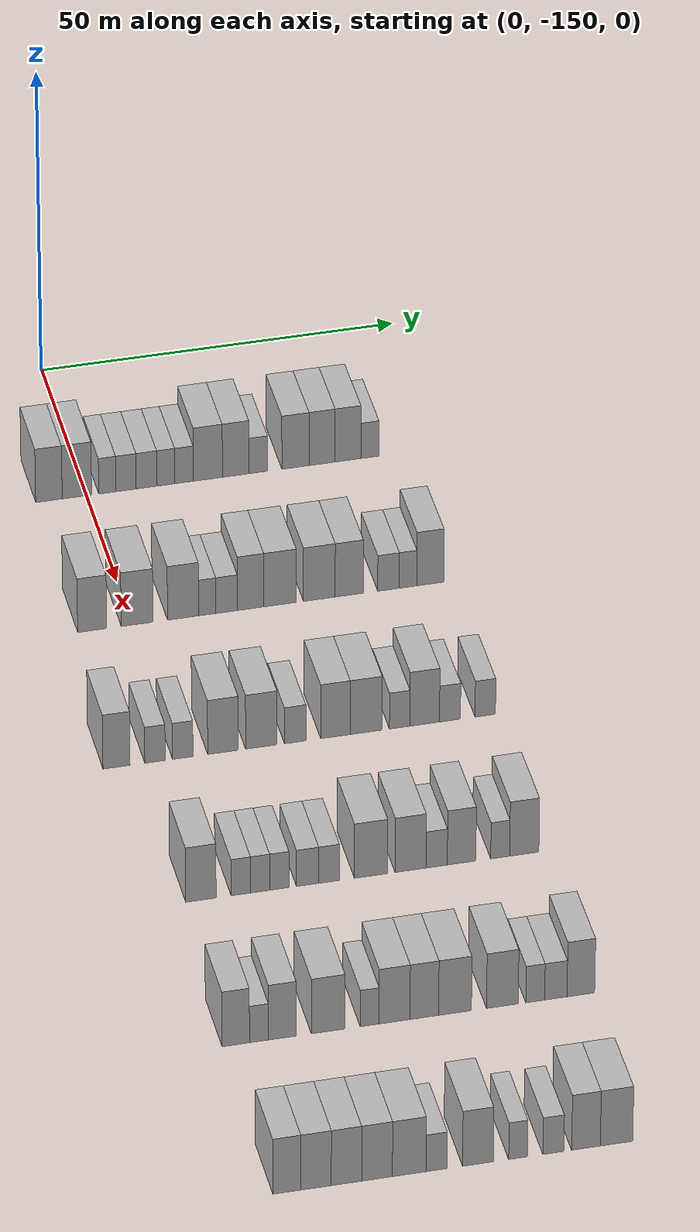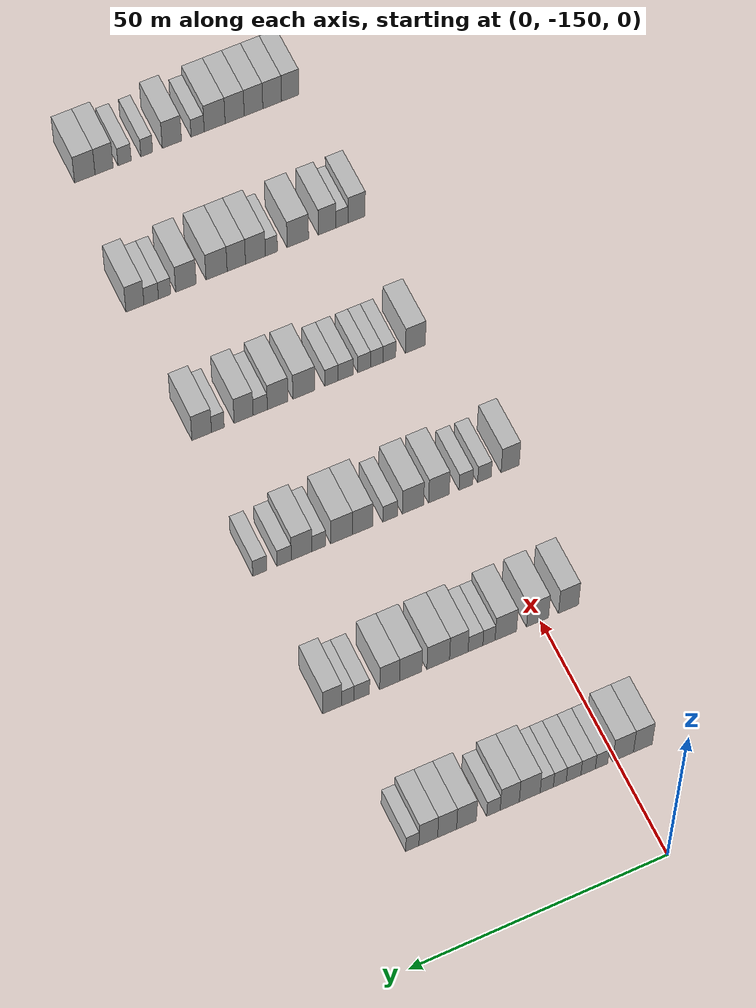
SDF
<sdf version="1.6">
 <world name="default">
  <model name="building_77">
   <static>1</static>
   <pose>25.0000 -155.2513 0 0.000000 0.000000 0.000000</pose>
   <link name="link">
    <pose>0 0 4.50 0 0 0</pose>
    <collision name="collision"><geometry><box><size>10.0000 3.7093 9.0000</size></box></geometry></collision>
    <visual name="visual">
     <cast_shadows>0</cast_shadows>
     <geometry><box><size>10.0000 3.7093 9.0000</size></box></geometry>
     <material>
      <script>
       <uri>model://HANNAS_wall/materials/scripts</uri>
       <uri>model://HANNAS_wall/materials/textures</uri>
       <name>vrc/HANNAS_wall</name>
      </script>
     </material>
    </visual>
   </link>
  </model>
  <model name="building_78">
   <static>1</static>
   <pose>25.0000 -151.3462 0 0.000000 0.000000 0.000000</pose>
   <link name="link">
    <pose>0 0 4.50 0 0 0</pose>
    <collision name="collision"><geometry><box><size>10.0000 4.1009 9.0000</size></box></geometry></collision>
    <visual name="visual">
     <cast_shadows>0</cast_shadows>
     <geometry><box><size>10.0000 4.1009 9.0000</size></box></geometry>
     <material>
      <script>
       <uri>model://HANNAS_wall/materials/scripts</uri>
       <uri>model://HANNAS_wall/materials/textures</uri>
       <name>vrc/HANNAS_wall</name>
      </script>
     </material>
    </visual>
   </link>
  </model>
  <model name="building_79">
   <static>1</static>
   <pose>25.0000 -147.0889 0 0.000000 0.000000 0.000000</pose>
   <link name="link">
    <pose>0 0 3.00 0 0 0</pose>
    <collision name="collision"><geometry><box><size>10.0000 2.4137 6.0000</size></box></geometry></collision>
    <visual name="visual">
     <cast_shadows>0</cast_shadows>
     <geometry><box><size>10.0000 2.4137 6.0000</size></box></geometry>
     <material>
      <script>
       <uri>model://HANNAS_wall/materials/scripts</uri>
       <uri>model://HANNAS_wall/materials/textures</uri>
       <name>vrc/HANNAS_wall</name>
      </script>
     </material>
    </visual>
   </link>
  </model>
  <model name="building_80">
   <static>1</static>
   <pose>25.0000 -144.4628 0 0.000000 0.000000 0.000000</pose>
   <link name="link">
    <pose>0 0 3.00 0 0 0</pose>
    <collision name="collision"><geometry><box><size>10.0000 2.8384 6.0000</size></box></geometry></collision>
    <visual name="visual">
     <cast_shadows>0</cast_shadows>
     <geometry><box><size>10.0000 2.8384 6.0000</size></box></geometry>
     <material>
      <script>
       <uri>model://HANNAS_wall/materials/scripts</uri>
       <uri>model://HANNAS_wall/materials/textures</uri>
       <name>vrc/HANNAS_wall</name>
      </script>
     </material>
    </visual>
   </link>
  </model>
  <model name="building_81">
   <static>1</static>
   <pose>25.0000 -141.5960 0 0.000000 0.000000 0.000000</pose>
   <link name="link">
    <pose>0 0 3.00 0 0 0</pose>
    <collision name="collision"><geometry><box><size>10.0000 2.8951 6.0000</size></box></geometry></collision>
    <visual name="visual">
     <cast_shadows>0</cast_shadows>
     <geometry><box><size>10.0000 2.8951 6.0000</size></box></geometry>
     <material>
      <script>
       <uri>model://HANNAS_wall/materials/scripts</uri>
       <uri>model://HANNAS_wall/materials/textures</uri>
       <name>vrc/HANNAS_wall</name>
      </script>
     </material>
    </visual>
   </link>
  </model>
  <model name="building_82">
   <static>1</static>
   <pose>25.0000 -138.8902 0 0.000000 0.000000 0.000000</pose>
   <link name="link">
    <pose>0 0 3.00 0 0 0</pose>
    <collision name="collision"><geometry><box><size>10.0000 2.5166 6.0000</size></box></geometry></collision>
    <visual name="visual">
     <cast_shadows>0</cast_shadows>
     <geometry><box><size>10.0000 2.5166 6.0000</size></box></geometry>
     <material>
      <script>
       <uri>model://HANNAS_wall/materials/scripts</uri>
       <uri>model://HANNAS_wall/materials/textures</uri>
       <name>vrc/HANNAS_wall</name>
      </script>
     </material>
    </visual>
   </link>
  </model>
  <model name="building_83">
   <static>1</static>
   <pose>25.0000 -136.3316 0 0.000000 0.000000 0.000000</pose>
   <link name="link">
    <pose>0 0 3.00 0 0 0</pose>
    <collision name="collision"><geometry><box><size>10.0000 2.6004 6.0000</size></box></geometry></collision>
    <visual name="visual">
     <cast_shadows>0</cast_shadows>
     <geometry><box><size>10.0000 2.6004 6.0000</size></box></geometry>
     <material>
      <script>
       <uri>model://HANNAS_wall/materials/scripts</uri>
       <uri>model://HANNAS_wall/materials/textures</uri>
       <name>vrc/HANNAS_wall</name>
      </script>
     </material>
    </visual>
   </link>
  </model>
  <model name="building_84">
   <static>1</static>
   <pose>25.0000 -132.9936 0 0.000000 0.000000 0.000000</pose>
   <link name="link">
    <pose>0 0 4.50 0 0 0</pose>
    <collision name="collision"><geometry><box><size>10.0000 4.0757 9.0000</size></box></geometry></collision>
    <visual name="visual">
     <cast_shadows>0</cast_shadows>
     <geometry><box><size>10.0000 4.0757 9.0000</size></box></geometry>
     <material>
      <script>
       <uri>model://HANNAS_wall/materials/scripts</uri>
       <uri>model://HANNAS_wall/materials/textures</uri>
       <name>vrc/HANNAS_wall</name>
      </script>
     </material>
    </visual>
   </link>
  </model>
  <model name="building_85">
   <static>1</static>
   <pose>25.0000 -129.0908 0 0.000000 0.000000 0.000000</pose>
   <link name="link">
    <pose>0 0 4.50 0 0 0</pose>
    <collision name="collision"><geometry><box><size>10.0000 3.7299 9.0000</size></box></geometry></collision>
    <visual name="visual">
     <cast_shadows>0</cast_shadows>
     <geometry><box><size>10.0000 3.7299 9.0000</size></box></geometry>
     <material>
      <script>
       <uri>model://HANNAS_wall/materials/scripts</uri>
       <uri>model://HANNAS_wall/materials/textures</uri>
       <name>vrc/HANNAS_wall</name>
      </script>
     </material>
    </visual>
   </link>
  </model>
  <model name="building_86">
   <static>1</static>
   <pose>25.0000 -125.9106 0 0.000000 0.000000 0.000000</pose>
   <link name="link">
    <pose>0 0 3.00 0 0 0</pose>
    <collision name="collision"><geometry><box><size>10.0000 2.6305 6.0000</size></box></geometry></collision>
    <visual name="visual">
     <cast_shadows>0</cast_shadows>
     <geometry><box><size>10.0000 2.6305 6.0000</size></box></geometry>
     <material>
      <script>
       <uri>model://HANNAS_wall/materials/scripts</uri>
       <uri>model://HANNAS_wall/materials/textures</uri>
       <name>vrc/HANNAS_wall</name>
      </script>
     </material>
    </visual>
   </link>
  </model>
  <model name="building_87">
   <static>1</static>
   <pose>25.0000 -120.6784 0 0.000000 0.000000 0.000000</pose>
   <link name="link">
    <pose>0 0 4.50 0 0 0</pose>
    <collision name="collision"><geometry><box><size>10.0000 3.8340 9.0000</size></box></geometry></collision>
    <visual name="visual">
     <cast_shadows>0</cast_shadows>
     <geometry><box><size>10.0000 3.8340 9.0000</size></box></geometry>
     <material>
      <script>
       <uri>model://HANNAS_wall/materials/scripts</uri>
       <uri>model://HANNAS_wall/materials/textures</uri>
       <name>vrc/HANNAS_wall</name>
      </script>
     </material>
    </visual>
   </link>
  </model>
  <model name="building_88">
   <static>1</static>
   <pose>25.0000 -116.9257 0 0.000000 0.000000 0.000000</pose>
   <link name="link">
    <pose>0 0 4.50 0 0 0</pose>
    <collision name="collision"><geometry><box><size>10.0000 3.6714 9.0000</size></box></geometry></collision>
    <visual name="visual">
     <cast_shadows>0</cast_shadows>
     <geometry><box><size>10.0000 3.6714 9.0000</size></box></geometry>
     <material>
      <script>
       <uri>model://HANNAS_wall/materials/scripts</uri>
       <uri>model://HANNAS_wall/materials/textures</uri>
       <name>vrc/HANNAS_wall</name>
      </script>
     </material>
    </visual>
   </link>
  </model>
  <model name="building_89">
   <static>1</static>
   <pose>25.0000 -113.2795 0 0.000000 0.000000 0.000000</pose>
   <link name="link">
    <pose>0 0 4.50 0 0 0</pose>
    <collision name="collision"><geometry><box><size>10.0000 3.6208 9.0000</size></box></geometry></collision>
    <visual name="visual">
     <cast_shadows>0</cast_shadows>
     <geometry><box><size>10.0000 3.6208 9.0000</size></box></geometry>
     <material>
      <script>
       <uri>model://HANNAS_wall/materials/scripts</uri>
       <uri>model://HANNAS_wall/materials/textures</uri>
       <name>vrc/HANNAS_wall</name>
      </script>
     </material>
    </visual>
   </link>
  </model>
  <model name="building_90">
   <static>1</static>
   <pose>25.0000 -110.1933 0 0.000000 0.000000 0.000000</pose>
   <link name="link">
    <pose>0 0 3.00 0 0 0</pose>
    <collision name="collision"><geometry><box><size>10.0000 2.5516 6.0000</size></box></geometry></collision>
    <visual name="visual">
     <cast_shadows>0</cast_shadows>
     <geometry><box><size>10.0000 2.5516 6.0000</size></box></geometry>
     <material>
      <script>
       <uri>model://HANNAS_wall/materials/scripts</uri>
       <uri>model://HANNAS_wall/materials/textures</uri>
       <name>vrc/HANNAS_wall</name>
      </script>
     </material>
    </visual>
   </link>
  </model>
  <model name="building_300">
   <static>1</static>
   <pose>55.0000 -155.5404 0 0.000000 0.000000 0.000000</pose>
   <link name="link">
    <pose>0 0 4.50 0 0 0</pose>
    <collision name="collision"><geometry><box><size>10.0000 3.9939 9.0000</size></box></geometry></collision>
    <visual name="visual">
     <cast_shadows>0</cast_shadows>
     <geometry><box><size>10.0000 3.9939 9.0000</size></box></geometry>
     <material>
      <script>
       <uri>model://HANNAS_wall/materials/scripts</uri>
       <uri>model://HANNAS_wall/materials/textures</uri>
       <name>vrc/HANNAS_wall</name>
      </script>
     </material>
    </visual>
   </link>
  </model>
  <model name="building_301">
   <static>1</static>
   <pose>55.0000 -149.3508 0 0.000000 0.000000 0.000000</pose>
   <link name="link">
    <pose>0 0 4.50 0 0 0</pose>
    <collision name="collision"><geometry><box><size>10.0000 4.3851 9.0000</size></box></geometry></collision>
    <visual name="visual">
     <cast_shadows>0</cast_shadows>
     <geometry><box><size>10.0000 4.3851 9.0000</size></box></geometry>
     <material>
      <script>
       <uri>model://HANNAS_wall/materials/scripts</uri>
       <uri>model://HANNAS_wall/materials/textures</uri>
       <name>vrc/HANNAS_wall</name>
      </script>
     </material>
    </visual>
   </link>
  </model>
  <model name="building_302">
   <static>1</static>
   <pose>55.0000 -143.0170 0 0.000000 0.000000 0.000000</pose>
   <link name="link">
    <pose>0 0 4.50 0 0 0</pose>
    <collision name="collision"><geometry><box><size>10.0000 4.2826 9.0000</size></box></geometry></collision>
    <visual name="visual">
     <cast_shadows>0</cast_shadows>
     <geometry><box><size>10.0000 4.2826 9.0000</size></box></geometry>
     <material>
      <script>
       <uri>model://HANNAS_wall/materials/scripts</uri>
       <uri>model://HANNAS_wall/materials/textures</uri>
       <name>vrc/HANNAS_wall</name>
      </script>
     </material>
    </visual>
   </link>
  </model>
  <model name="building_303">
   <static>1</static>
   <pose>55.0000 -139.6743 0 0.000000 0.000000 0.000000</pose>
   <link name="link">
    <pose>0 0 3.00 0 0 0</pose>
    <collision name="collision"><geometry><box><size>10.0000 2.4028 6.0000</size></box></geometry></collision>
    <visual name="visual">
     <cast_shadows>0</cast_shadows>
     <geometry><box><size>10.0000 2.4028 6.0000</size></box></geometry>
     <material>
      <script>
       <uri>model://HANNAS_wall/materials/scripts</uri>
       <uri>model://HANNAS_wall/materials/textures</uri>
       <name>vrc/HANNAS_wall</name>
      </script>
     </material>
    </visual>
   </link>
  </model>
  <model name="building_304">
   <static>1</static>
   <pose>55.0000 -136.9940 0 0.000000 0.000000 0.000000</pose>
   <link name="link">
    <pose>0 0 3.00 0 0 0</pose>
    <collision name="collision"><geometry><box><size>10.0000 2.9577 6.0000</size></box></geometry></collision>
    <visual name="visual">
     <cast_shadows>0</cast_shadows>
     <geometry><box><size>10.0000 2.9577 6.0000</size></box></geometry>
     <material>
      <script>
       <uri>model://HANNAS_wall/materials/scripts</uri>
       <uri>model://HANNAS_wall/materials/textures</uri>
       <name>vrc/HANNAS_wall</name>
      </script>
     </material>
    </visual>
   </link>
  </model>
  <model name="building_305">
   <static>1</static>
   <pose>55.0000 -133.6796 0 0.000000 0.000000 0.000000</pose>
   <link name="link">
    <pose>0 0 4.50 0 0 0</pose>
    <collision name="collision"><geometry><box><size>10.0000 3.6711 9.0000</size></box></geometry></collision>
    <visual name="visual">
     <cast_shadows>0</cast_shadows>
     <geometry><box><size>10.0000 3.6711 9.0000</size></box></geometry>
     <material>
      <script>
       <uri>model://HANNAS_wall/materials/scripts</uri>
       <uri>model://HANNAS_wall/materials/textures</uri>
       <name>vrc/HANNAS_wall</name>
      </script>
     </material>
    </visual>
   </link>
  </model>
  <model name="building_306">
   <static>1</static>
   <pose>55.0000 -129.6058 0 0.000000 0.000000 0.000000</pose>
   <link name="link">
    <pose>0 0 4.50 0 0 0</pose>
    <collision name="collision"><geometry><box><size>10.0000 4.4765 9.0000</size></box></geometry></collision>
    <visual name="visual">
     <cast_shadows>0</cast_shadows>
     <geometry><box><size>10.0000 4.4765 9.0000</size></box></geometry>
     <material>
      <script>
       <uri>model://HANNAS_wall/materials/scripts</uri>
       <uri>model://HANNAS_wall/materials/textures</uri>
       <name>vrc/HANNAS_wall</name>
      </script>
     </material>
    </visual>
   </link>
  </model>
  <model name="building_307">
   <static>1</static>
   <pose>55.0000 -124.1705 0 0.000000 0.000000 0.000000</pose>
   <link name="link">
    <pose>0 0 4.50 0 0 0</pose>
    <collision name="collision"><geometry><box><size>10.0000 4.3941 9.0000</size></box></geometry></collision>
    <visual name="visual">
     <cast_shadows>0</cast_shadows>
     <geometry><box><size>10.0000 4.3941 9.0000</size></box></geometry>
     <material>
      <script>
       <uri>model://HANNAS_wall/materials/scripts</uri>
       <uri>model://HANNAS_wall/materials/textures</uri>
       <name>vrc/HANNAS_wall</name>
      </script>
     </material>
    </visual>
   </link>
  </model>
  <model name="building_308">
   <static>1</static>
   <pose>55.0000 -120.0221 0 0.000000 0.000000 0.000000</pose>
   <link name="link">
    <pose>0 0 4.50 0 0 0</pose>
    <collision name="collision"><geometry><box><size>10.0000 3.9028 9.0000</size></box></geometry></collision>
    <visual name="visual">
     <cast_shadows>0</cast_shadows>
     <geometry><box><size>10.0000 3.9028 9.0000</size></box></geometry>
     <material>
      <script>
       <uri>model://HANNAS_wall/materials/scripts</uri>
       <uri>model://HANNAS_wall/materials/textures</uri>
       <name>vrc/HANNAS_wall</name>
      </script>
     </material>
    </visual>
   </link>
  </model>
  <model name="building_309">
   <static>1</static>
   <pose>55.0000 -114.5721 0 0.000000 0.000000 0.000000</pose>
   <link name="link">
    <pose>0 0 3.00 0 0 0</pose>
    <collision name="collision"><geometry><box><size>10.0000 2.9970 6.0000</size></box></geometry></collision>
    <visual name="visual">
     <cast_shadows>0</cast_shadows>
     <geometry><box><size>10.0000 2.9970 6.0000</size></box></geometry>
     <material>
      <script>
       <uri>model://HANNAS_wall/materials/scripts</uri>
       <uri>model://HANNAS_wall/materials/textures</uri>
       <name>vrc/HANNAS_wall</name>
      </script>
     </material>
    </visual>
   </link>
  </model>
  <model name="building_310">
   <static>1</static>
   <pose>55.0000 -111.8618 0 0.000000 0.000000 0.000000</pose>
   <link name="link">
    <pose>0 0 3.00 0 0 0</pose>
    <collision name="collision"><geometry><box><size>10.0000 2.4237 6.0000</size></box></geometry></collision>
    <visual name="visual">
     <cast_shadows>0</cast_shadows>
     <geometry><box><size>10.0000 2.4237 6.0000</size></box></geometry>
     <material>
      <script>
       <uri>model://HANNAS_wall/materials/scripts</uri>
       <uri>model://HANNAS_wall/materials/textures</uri>
       <name>vrc/HANNAS_wall</name>
      </script>
     </material>
    </visual>
   </link>
  </model>
  <model name="building_311">
   <static>1</static>
   <pose>55.0000 -108.7755 0 0.000000 0.000000 0.000000</pose>
   <link name="link">
    <pose>0 0 4.50 0 0 0</pose>
    <collision name="collision"><geometry><box><size>10.0000 3.7488 9.0000</size></box></geometry></collision>
    <visual name="visual">
     <cast_shadows>0</cast_shadows>
     <geometry><box><size>10.0000 3.7488 9.0000</size></box></geometry>
     <material>
      <script>
       <uri>model://HANNAS_wall/materials/scripts</uri>
       <uri>model://HANNAS_wall/materials/textures</uri>
       <name>vrc/HANNAS_wall</name>
      </script>
     </material>
    </visual>
   </link>
  </model>
  <model name="building_513">
   <static>1</static>
   <pose>85.0000 -158.5791 0 0.000000 0.000000 0.000000</pose>
   <link name="link">
    <pose>0 0 4.50 0 0 0</pose>
    <collision name="collision"><geometry><box><size>10.0000 3.6643 9.0000</size></box></geometry></collision>
    <visual name="visual">
     <cast_shadows>0</cast_shadows>
     <geometry><box><size>10.0000 3.6643 9.0000</size></box></geometry>
     <material>
      <script>
       <uri>model://HANNAS_wall/materials/scripts</uri>
       <uri>model://HANNAS_wall/materials/textures</uri>
       <name>vrc/HANNAS_wall</name>
      </script>
     </material>
    </visual>
   </link>
  </model>
  <model name="building_514">
   <static>1</static>
   <pose>85.0000 -153.3666 0 0.000000 0.000000 0.000000</pose>
   <link name="link">
    <pose>0 0 3.00 0 0 0</pose>
    <collision name="collision"><geometry><box><size>10.0000 2.7608 6.0000</size></box></geometry></collision>
    <visual name="visual">
     <cast_shadows>0</cast_shadows>
     <geometry><box><size>10.0000 2.7608 6.0000</size></box></geometry>
     <material>
      <script>
       <uri>model://HANNAS_wall/materials/scripts</uri>
       <uri>model://HANNAS_wall/materials/textures</uri>
       <name>vrc/HANNAS_wall</name>
      </script>
     </material>
    </visual>
   </link>
  </model>
  <model name="building_515">
   <static>1</static>
   <pose>85.0000 -149.6020 0 0.000000 0.000000 0.000000</pose>
   <link name="link">
    <pose>0 0 3.00 0 0 0</pose>
    <collision name="collision"><geometry><box><size>10.0000 2.7684 6.0000</size></box></geometry></collision>
    <visual name="visual">
     <cast_shadows>0</cast_shadows>
     <geometry><box><size>10.0000 2.7684 6.0000</size></box></geometry>
     <material>
      <script>
       <uri>model://HANNAS_wall/materials/scripts</uri>
       <uri>model://HANNAS_wall/materials/textures</uri>
       <name>vrc/HANNAS_wall</name>
      </script>
     </material>
    </visual>
   </link>
  </model>
  <model name="building_516">
   <static>1</static>
   <pose>85.0000 -144.1398 0 0.000000 0.000000 0.000000</pose>
   <link name="link">
    <pose>0 0 4.50 0 0 0</pose>
    <collision name="collision"><geometry><box><size>10.0000 4.1560 9.0000</size></box></geometry></collision>
    <visual name="visual">
     <cast_shadows>0</cast_shadows>
     <geometry><box><size>10.0000 4.1560 9.0000</size></box></geometry>
     <material>
      <script>
       <uri>model://HANNAS_wall/materials/scripts</uri>
       <uri>model://HANNAS_wall/materials/textures</uri>
       <name>vrc/HANNAS_wall</name>
      </script>
     </material>
    </visual>
   </link>
  </model>
  <model name="building_517">
   <static>1</static>
   <pose>85.0000 -138.9218 0 0.000000 0.000000 0.000000</pose>
   <link name="link">
    <pose>0 0 4.50 0 0 0</pose>
    <collision name="collision"><geometry><box><size>10.0000 4.2799 9.0000</size></box></geometry></collision>
    <visual name="visual">
     <cast_shadows>0</cast_shadows>
     <geometry><box><size>10.0000 4.2799 9.0000</size></box></geometry>
     <material>
      <script>
       <uri>model://HANNAS_wall/materials/scripts</uri>
       <uri>model://HANNAS_wall/materials/textures</uri>
       <name>vrc/HANNAS_wall</name>
      </script>
     </material>
    </visual>
   </link>
  </model>
  <model name="building_518">
   <static>1</static>
   <pose>85.0000 -134.3109 0 0.000000 0.000000 0.000000</pose>
   <link name="link">
    <pose>0 0 3.00 0 0 0</pose>
    <collision name="collision"><geometry><box><size>10.0000 2.9420 6.0000</size></box></geometry></collision>
    <visual name="visual">
     <cast_shadows>0</cast_shadows>
     <geometry><box><size>10.0000 2.9420 6.0000</size></box></geometry>
     <material>
      <script>
       <uri>model://HANNAS_wall/materials/scripts</uri>
       <uri>model://HANNAS_wall/materials/textures</uri>
       <name>vrc/HANNAS_wall</name>
      </script>
     </material>
    </visual>
   </link>
  </model>
  <model name="building_519">
   <static>1</static>
   <pose>85.0000 -128.8270 0 0.000000 0.000000 0.000000</pose>
   <link name="link">
    <pose>0 0 4.50 0 0 0</pose>
    <collision name="collision"><geometry><box><size>10.0000 4.0256 9.0000</size></box></geometry></collision>
    <visual name="visual">
     <cast_shadows>0</cast_shadows>
     <geometry><box><size>10.0000 4.0256 9.0000</size></box></geometry>
     <material>
      <script>
       <uri>model://HANNAS_wall/materials/scripts</uri>
       <uri>model://HANNAS_wall/materials/textures</uri>
       <name>vrc/HANNAS_wall</name>
      </script>
     </material>
    </visual>
   </link>
  </model>
  <model name="building_520">
   <static>1</static>
   <pose>85.0000 -124.6363 0 0.000000 0.000000 0.000000</pose>
   <link name="link">
    <pose>0 0 4.50 0 0 0</pose>
    <collision name="collision"><geometry><box><size>10.0000 4.3558 9.0000</size></box></geometry></collision>
    <visual name="visual">
     <cast_shadows>0</cast_shadows>
     <geometry><box><size>10.0000 4.3558 9.0000</size></box></geometry>
     <material>
      <script>
       <uri>model://HANNAS_wall/materials/scripts</uri>
       <uri>model://HANNAS_wall/materials/textures</uri>
       <name>vrc/HANNAS_wall</name>
      </script>
     </material>
    </visual>
   </link>
  </model>
  <model name="building_521">
   <static>1</static>
   <pose>85.0000 -120.0628 0 0.000000 0.000000 0.000000</pose>
   <link name="link">
    <pose>0 0 3.00 0 0 0</pose>
    <collision name="collision"><geometry><box><size>10.0000 2.7913 6.0000</size></box></geometry></collision>
    <visual name="visual">
     <cast_shadows>0</cast_shadows>
     <geometry><box><size>10.0000 2.7913 6.0000</size></box></geometry>
     <material>
      <script>
       <uri>model://HANNAS_wall/materials/scripts</uri>
       <uri>model://HANNAS_wall/materials/textures</uri>
       <name>vrc/HANNAS_wall</name>
      </script>
     </material>
    </visual>
   </link>
  </model>
  <model name="building_522">
   <static>1</static>
   <pose>85.0000 -116.6362 0 0.000000 0.000000 0.000000</pose>
   <link name="link">
    <pose>0 0 4.50 0 0 0</pose>
    <collision name="collision"><geometry><box><size>10.0000 4.0618 9.0000</size></box></geometry></collision>
    <visual name="visual">
     <cast_shadows>0</cast_shadows>
     <geometry><box><size>10.0000 4.0618 9.0000</size></box></geometry>
     <material>
      <script>
       <uri>model://HANNAS_wall/materials/scripts</uri>
       <uri>model://HANNAS_wall/materials/textures</uri>
       <name>vrc/HANNAS_wall</name>
      </script>
     </material>
    </visual>
   </link>
  </model>
  <model name="building_523">
   <static>1</static>
   <pose>85.0000 -113.1705 0 0.000000 0.000000 0.000000</pose>
   <link name="link">
    <pose>0 0 3.00 0 0 0</pose>
    <collision name="collision"><geometry><box><size>10.0000 2.8697 6.0000</size></box></geometry></collision>
    <visual name="visual">
     <cast_shadows>0</cast_shadows>
     <geometry><box><size>10.0000 2.8697 6.0000</size></box></geometry>
     <material>
      <script>
       <uri>model://HANNAS_wall/materials/scripts</uri>
       <uri>model://HANNAS_wall/materials/textures</uri>
       <name>vrc/HANNAS_wall</name>
      </script>
     </material>
    </visual>
   </link>
  </model>
  <model name="building_524">
   <static>1</static>
   <pose>85.0000 -108.3420 0 0.000000 0.000000 0.000000</pose>
   <link name="link">
    <pose>0 0 3.00 0 0 0</pose>
    <collision name="collision"><geometry><box><size>10.0000 2.7872 6.0000</size></box></geometry></collision>
    <visual name="visual">
     <cast_shadows>0</cast_shadows>
     <geometry><box><size>10.0000 2.7872 6.0000</size></box></geometry>
     <material>
      <script>
       <uri>model://HANNAS_wall/materials/scripts</uri>
       <uri>model://HANNAS_wall/materials/textures</uri>
       <name>vrc/HANNAS_wall</name>
      </script>
     </material>
    </visual>
   </link>
  </model>
  <model name="building_731">
   <static>1</static>
   <pose>115.0000 -153.7175 0 0.000000 0.000000 0.000000</pose>
   <link name="link">
    <pose>0 0 4.50 0 0 0</pose>
    <collision name="collision"><geometry><box><size>10.0000 4.0666 9.0000</size></box></geometry></collision>
    <visual name="visual">
     <cast_shadows>0</cast_shadows>
     <geometry><box><size>10.0000 4.0666 9.0000</size></box></geometry>
     <material>
      <script>
       <uri>model://HANNAS_wall/materials/scripts</uri>
       <uri>model://HANNAS_wall/materials/textures</uri>
       <name>vrc/HANNAS_wall</name>
      </script>
     </material>
    </visual>
   </link>
  </model>
  <model name="building_732">
   <static>1</static>
   <pose>115.0000 -148.3792 0 0.000000 0.000000 0.000000</pose>
   <link name="link">
    <pose>0 0 3.00 0 0 0</pose>
    <collision name="collision"><geometry><box><size>10.0000 2.6101 6.0000</size></box></geometry></collision>
    <visual name="visual">
     <cast_shadows>0</cast_shadows>
     <geometry><box><size>10.0000 2.6101 6.0000</size></box></geometry>
     <material>
      <script>
       <uri>model://HANNAS_wall/materials/scripts</uri>
       <uri>model://HANNAS_wall/materials/textures</uri>
       <name>vrc/HANNAS_wall</name>
      </script>
     </material>
    </visual>
   </link>
  </model>
  <model name="building_733">
   <static>1</static>
   <pose>115.0000 -145.7975 0 0.000000 0.000000 0.000000</pose>
   <link name="link">
    <pose>0 0 3.00 0 0 0</pose>
    <collision name="collision"><geometry><box><size>10.0000 2.5533 6.0000</size></box></geometry></collision>
    <visual name="visual">
     <cast_shadows>0</cast_shadows>
     <geometry><box><size>10.0000 2.5533 6.0000</size></box></geometry>
     <material>
      <script>
       <uri>model://HANNAS_wall/materials/scripts</uri>
       <uri>model://HANNAS_wall/materials/textures</uri>
       <name>vrc/HANNAS_wall</name>
      </script>
     </material>
    </visual>
   </link>
  </model>
  <model name="building_734">
   <static>1</static>
   <pose>115.0000 -143.2306 0 0.000000 0.000000 0.000000</pose>
   <link name="link">
    <pose>0 0 3.00 0 0 0</pose>
    <collision name="collision"><geometry><box><size>10.0000 2.5805 6.0000</size></box></geometry></collision>
    <visual name="visual">
     <cast_shadows>0</cast_shadows>
     <geometry><box><size>10.0000 2.5805 6.0000</size></box></geometry>
     <material>
      <script>
       <uri>model://HANNAS_wall/materials/scripts</uri>
       <uri>model://HANNAS_wall/materials/textures</uri>
       <name>vrc/HANNAS_wall</name>
      </script>
     </material>
    </visual>
   </link>
  </model>
  <model name="building_735">
   <static>1</static>
   <pose>115.0000 -139.4433 0 0.000000 0.000000 0.000000</pose>
   <link name="link">
    <pose>0 0 3.00 0 0 0</pose>
    <collision name="collision"><geometry><box><size>10.0000 2.9941 6.0000</size></box></geometry></collision>
    <visual name="visual">
     <cast_shadows>0</cast_shadows>
     <geometry><box><size>10.0000 2.9941 6.0000</size></box></geometry>
     <material>
      <script>
       <uri>model://HANNAS_wall/materials/scripts</uri>
       <uri>model://HANNAS_wall/materials/textures</uri>
       <name>vrc/HANNAS_wall</name>
      </script>
     </material>
    </visual>
   </link>
  </model>
  <model name="building_736">
   <static>1</static>
   <pose>115.0000 -136.5608 0 0.000000 0.000000 0.000000</pose>
   <link name="link">
    <pose>0 0 3.00 0 0 0</pose>
    <collision name="collision"><geometry><box><size>10.0000 2.7710 6.0000</size></box></geometry></collision>
    <visual name="visual">
     <cast_shadows>0</cast_shadows>
     <geometry><box><size>10.0000 2.7710 6.0000</size></box></geometry>
     <material>
      <script>
       <uri>model://HANNAS_wall/materials/scripts</uri>
       <uri>model://HANNAS_wall/materials/textures</uri>
       <name>vrc/HANNAS_wall</name>
      </script>
     </material>
    </visual>
   </link>
  </model>
  <model name="building_737">
   <static>1</static>
   <pose>115.0000 -130.9454 0 0.000000 0.000000 0.000000</pose>
   <link name="link">
    <pose>0 0 4.50 0 0 0</pose>
    <collision name="collision"><geometry><box><size>10.0000 4.4600 9.0000</size></box></geometry></collision>
    <visual name="visual">
     <cast_shadows>0</cast_shadows>
     <geometry><box><size>10.0000 4.4600 9.0000</size></box></geometry>
     <material>
      <script>
       <uri>model://HANNAS_wall/materials/scripts</uri>
       <uri>model://HANNAS_wall/materials/textures</uri>
       <name>vrc/HANNAS_wall</name>
      </script>
     </material>
    </visual>
   </link>
  </model>
  <model name="building_738">
   <static>1</static>
   <pose>115.0000 -125.6364 0 0.000000 0.000000 0.000000</pose>
   <link name="link">
    <pose>0 0 4.50 0 0 0</pose>
    <collision name="collision"><geometry><box><size>10.0000 4.1579 9.0000</size></box></geometry></collision>
    <visual name="visual">
     <cast_shadows>0</cast_shadows>
     <geometry><box><size>10.0000 4.1579 9.0000</size></box></geometry>
     <material>
      <script>
       <uri>model://HANNAS_wall/materials/scripts</uri>
       <uri>model://HANNAS_wall/materials/textures</uri>
       <name>vrc/HANNAS_wall</name>
      </script>
     </material>
    </visual>
   </link>
  </model>
  <model name="building_739">
   <static>1</static>
   <pose>115.0000 -122.1219 0 0.000000 0.000000 0.000000</pose>
   <link name="link">
    <pose>0 0 3.00 0 0 0</pose>
    <collision name="collision"><geometry><box><size>10.0000 2.8711 6.0000</size></box></geometry></collision>
    <visual name="visual">
     <cast_shadows>0</cast_shadows>
     <geometry><box><size>10.0000 2.8711 6.0000</size></box></geometry>
     <material>
      <script>
       <uri>model://HANNAS_wall/materials/scripts</uri>
       <uri>model://HANNAS_wall/materials/textures</uri>
       <name>vrc/HANNAS_wall</name>
      </script>
     </material>
    </visual>
   </link>
  </model>
  <model name="building_740">
   <static>1</static>
   <pose>115.0000 -118.7641 0 0.000000 0.000000 0.000000</pose>
   <link name="link">
    <pose>0 0 4.50 0 0 0</pose>
    <collision name="collision"><geometry><box><size>10.0000 3.8444 9.0000</size></box></geometry></collision>
    <visual name="visual">
     <cast_shadows>0</cast_shadows>
     <geometry><box><size>10.0000 3.8444 9.0000</size></box></geometry>
     <material>
      <script>
       <uri>model://HANNAS_wall/materials/scripts</uri>
       <uri>model://HANNAS_wall/materials/textures</uri>
       <name>vrc/HANNAS_wall</name>
      </script>
     </material>
    </visual>
   </link>
  </model>
  <model name="building_741">
   <static>1</static>
   <pose>115.0000 -113.5637 0 0.000000 0.000000 0.000000</pose>
   <link name="link">
    <pose>0 0 3.00 0 0 0</pose>
    <collision name="collision"><geometry><box><size>10.0000 2.5564 6.0000</size></box></geometry></collision>
    <visual name="visual">
     <cast_shadows>0</cast_shadows>
     <geometry><box><size>10.0000 2.5564 6.0000</size></box></geometry>
     <material>
      <script>
       <uri>model://HANNAS_wall/materials/scripts</uri>
       <uri>model://HANNAS_wall/materials/textures</uri>
       <name>vrc/HANNAS_wall</name>
      </script>
     </material>
    </visual>
   </link>
  </model>
  <model name="building_742">
   <static>1</static>
   <pose>115.0000 -110.3175 0 0.000000 0.000000 0.000000</pose>
   <link name="link">
    <pose>0 0 4.50 0 0 0</pose>
    <collision name="collision"><geometry><box><size>10.0000 3.9361 9.0000</size></box></geometry></collision>
    <visual name="visual">
     <cast_shadows>0</cast_shadows>
     <geometry><box><size>10.0000 3.9361 9.0000</size></box></geometry>
     <material>
      <script>
       <uri>model://HANNAS_wall/materials/scripts</uri>
       <uri>model://HANNAS_wall/materials/textures</uri>
       <name>vrc/HANNAS_wall</name>
      </script>
     </material>
    </visual>
   </link>
  </model>
  <model name="building_950">
   <static>1</static>
   <pose>145.0000 -155.7242 0 0.000000 0.000000 0.000000</pose>
   <link name="link">
    <pose>0 0 4.50 0 0 0</pose>
    <collision name="collision"><geometry><box><size>10.0000 3.6025 9.0000</size></box></geometry></collision>
    <visual name="visual">
     <cast_shadows>0</cast_shadows>
     <geometry><box><size>10.0000 3.6025 9.0000</size></box></geometry>
     <material>
      <script>
       <uri>model://HANNAS_wall/materials/scripts</uri>
       <uri>model://HANNAS_wall/materials/textures</uri>
       <name>vrc/HANNAS_wall</name>
      </script>
     </material>
    </visual>
   </link>
  </model>
  <model name="building_951">
   <static>1</static>
   <pose>145.0000 -152.6740 0 0.000000 0.000000 0.000000</pose>
   <link name="link">
    <pose>0 0 3.00 0 0 0</pose>
    <collision name="collision"><geometry><box><size>10.0000 2.4980 6.0000</size></box></geometry></collision>
    <visual name="visual">
     <cast_shadows>0</cast_shadows>
     <geometry><box><size>10.0000 2.4980 6.0000</size></box></geometry>
     <material>
      <script>
       <uri>model://HANNAS_wall/materials/scripts</uri>
       <uri>model://HANNAS_wall/materials/textures</uri>
       <name>vrc/HANNAS_wall</name>
      </script>
     </material>
    </visual>
   </link>
  </model>
  <model name="building_952">
   <static>1</static>
   <pose>145.0000 -149.6035 0 0.000000 0.000000 0.000000</pose>
   <link name="link">
    <pose>0 0 4.50 0 0 0</pose>
    <collision name="collision"><geometry><box><size>10.0000 3.6430 9.0000</size></box></geometry></collision>
    <visual name="visual">
     <cast_shadows>0</cast_shadows>
     <geometry><box><size>10.0000 3.6430 9.0000</size></box></geometry>
     <material>
      <script>
       <uri>model://HANNAS_wall/materials/scripts</uri>
       <uri>model://HANNAS_wall/materials/textures</uri>
       <name>vrc/HANNAS_wall</name>
      </script>
     </material>
    </visual>
   </link>
  </model>
  <model name="building_953">
   <static>1</static>
   <pose>145.0000 -143.5641 0 0.000000 0.000000 0.000000</pose>
   <link name="link">
    <pose>0 0 4.50 0 0 0</pose>
    <collision name="collision"><geometry><box><size>10.0000 4.4358 9.0000</size></box></geometry></collision>
    <visual name="visual">
     <cast_shadows>0</cast_shadows>
     <geometry><box><size>10.0000 4.4358 9.0000</size></box></geometry>
     <material>
      <script>
       <uri>model://HANNAS_wall/materials/scripts</uri>
       <uri>model://HANNAS_wall/materials/textures</uri>
       <name>vrc/HANNAS_wall</name>
      </script>
     </material>
    </visual>
   </link>
  </model>
  <model name="building_954">
   <static>1</static>
   <pose>145.0000 -138.0978 0 0.000000 0.000000 0.000000</pose>
   <link name="link">
    <pose>0 0 3.00 0 0 0</pose>
    <collision name="collision"><geometry><box><size>10.0000 2.4967 6.0000</size></box></geometry></collision>
    <visual name="visual">
     <cast_shadows>0</cast_shadows>
     <geometry><box><size>10.0000 2.4967 6.0000</size></box></geometry>
     <material>
      <script>
       <uri>model://HANNAS_wall/materials/scripts</uri>
       <uri>model://HANNAS_wall/materials/textures</uri>
       <name>vrc/HANNAS_wall</name>
      </script>
     </material>
    </visual>
   </link>
  </model>
  <model name="building_955">
   <static>1</static>
   <pose>145.0000 -134.8040 0 0.000000 0.000000 0.000000</pose>
   <link name="link">
    <pose>0 0 4.50 0 0 0</pose>
    <collision name="collision"><geometry><box><size>10.0000 4.0909 9.0000</size></box></geometry></collision>
    <visual name="visual">
     <cast_shadows>0</cast_shadows>
     <geometry><box><size>10.0000 4.0909 9.0000</size></box></geometry>
     <material>
      <script>
       <uri>model://HANNAS_wall/materials/scripts</uri>
       <uri>model://HANNAS_wall/materials/textures</uri>
       <name>vrc/HANNAS_wall</name>
      </script>
     </material>
    </visual>
   </link>
  </model>
  <model name="building_956">
   <static>1</static>
   <pose>145.0000 -130.8693 0 0.000000 0.000000 0.000000</pose>
   <link name="link">
    <pose>0 0 4.50 0 0 0</pose>
    <collision name="collision"><geometry><box><size>10.0000 3.7784 9.0000</size></box></geometry></collision>
    <visual name="visual">
     <cast_shadows>0</cast_shadows>
     <geometry><box><size>10.0000 3.7784 9.0000</size></box></geometry>
     <material>
      <script>
       <uri>model://HANNAS_wall/materials/scripts</uri>
       <uri>model://HANNAS_wall/materials/textures</uri>
       <name>vrc/HANNAS_wall</name>
      </script>
     </material>
    </visual>
   </link>
  </model>
  <model name="building_957">
   <static>1</static>
   <pose>145.0000 -126.8108 0 0.000000 0.000000 0.000000</pose>
   <link name="link">
    <pose>0 0 4.50 0 0 0</pose>
    <collision name="collision"><geometry><box><size>10.0000 4.3387 9.0000</size></box></geometry></collision>
    <visual name="visual">
     <cast_shadows>0</cast_shadows>
     <geometry><box><size>10.0000 4.3387 9.0000</size></box></geometry>
     <material>
      <script>
       <uri>model://HANNAS_wall/materials/scripts</uri>
       <uri>model://HANNAS_wall/materials/textures</uri>
       <name>vrc/HANNAS_wall</name>
      </script>
     </material>
    </visual>
   </link>
  </model>
  <model name="building_958">
   <static>1</static>
   <pose>145.0000 -120.5418 0 0.000000 0.000000 0.000000</pose>
   <link name="link">
    <pose>0 0 4.50 0 0 0</pose>
    <collision name="collision"><geometry><box><size>10.0000 4.1991 9.0000</size></box></geometry></collision>
    <visual name="visual">
     <cast_shadows>0</cast_shadows>
     <geometry><box><size>10.0000 4.1991 9.0000</size></box></geometry>
     <material>
      <script>
       <uri>model://HANNAS_wall/materials/scripts</uri>
       <uri>model://HANNAS_wall/materials/textures</uri>
       <name>vrc/HANNAS_wall</name>
      </script>
     </material>
    </visual>
   </link>
  </model>
  <model name="building_959">
   <static>1</static>
   <pose>145.0000 -116.1884 0 0.000000 0.000000 0.000000</pose>
   <link name="link">
    <pose>0 0 3.00 0 0 0</pose>
    <collision name="collision"><geometry><box><size>10.0000 2.5077 6.0000</size></box></geometry></collision>
    <visual name="visual">
     <cast_shadows>0</cast_shadows>
     <geometry><box><size>10.0000 2.5077 6.0000</size></box></geometry>
     <material>
      <script>
       <uri>model://HANNAS_wall/materials/scripts</uri>
       <uri>model://HANNAS_wall/materials/textures</uri>
       <name>vrc/HANNAS_wall</name>
      </script>
     </material>
    </visual>
   </link>
  </model>
  <model name="building_960">
   <static>1</static>
   <pose>145.0000 -113.4516 0 0.000000 0.000000 0.000000</pose>
   <link name="link">
    <pose>0 0 3.00 0 0 0</pose>
    <collision name="collision"><geometry><box><size>10.0000 2.9659 6.0000</size></box></geometry></collision>
    <visual name="visual">
     <cast_shadows>0</cast_shadows>
     <geometry><box><size>10.0000 2.9659 6.0000</size></box></geometry>
     <material>
      <script>
       <uri>model://HANNAS_wall/materials/scripts</uri>
       <uri>model://HANNAS_wall/materials/textures</uri>
       <name>vrc/HANNAS_wall</name>
      </script>
     </material>
    </visual>
   </link>
  </model>
  <model name="building_961">
   <static>1</static>
   <pose>145.0000 -110.1316 0 0.000000 0.000000 0.000000</pose>
   <link name="link">
    <pose>0 0 4.50 0 0 0</pose>
    <collision name="collision"><geometry><box><size>10.0000 3.6741 9.0000</size></box></geometry></collision>
    <visual name="visual">
     <cast_shadows>0</cast_shadows>
     <geometry><box><size>10.0000 3.6741 9.0000</size></box></geometry>
     <material>
      <script>
       <uri>model://HANNAS_wall/materials/scripts</uri>
       <uri>model://HANNAS_wall/materials/textures</uri>
       <name>vrc/HANNAS_wall</name>
      </script>
     </material>
    </visual>
   </link>
  </model>
  <model name="building_1181">
   <static>1</static>
   <pose>175.0000 -155.7818 0 0.000000 0.000000 0.000000</pose>
   <link name="link">
    <pose>0 0 4.50 0 0 0</pose>
    <collision name="collision"><geometry><box><size>10.0000 3.6340 9.0000</size></box></geometry></collision>
    <visual name="visual">
     <cast_shadows>0</cast_shadows>
     <geometry><box><size>10.0000 3.6340 9.0000</size></box></geometry>
     <material>
      <script>
       <uri>model://HANNAS_wall/materials/scripts</uri>
       <uri>model://HANNAS_wall/materials/textures</uri>
       <name>vrc/HANNAS_wall</name>
      </script>
     </material>
    </visual>
   </link>
  </model>
  <model name="building_1182">
   <static>1</static>
   <pose>175.0000 -151.9934 0 0.000000 0.000000 0.000000</pose>
   <link name="link">
    <pose>0 0 4.50 0 0 0</pose>
    <collision name="collision"><geometry><box><size>10.0000 3.9428 9.0000</size></box></geometry></collision>
    <visual name="visual">
     <cast_shadows>0</cast_shadows>
     <geometry><box><size>10.0000 3.9428 9.0000</size></box></geometry>
     <material>
      <script>
       <uri>model://HANNAS_wall/materials/scripts</uri>
       <uri>model://HANNAS_wall/materials/textures</uri>
       <name>vrc/HANNAS_wall</name>
      </script>
     </material>
    </visual>
   </link>
  </model>
  <model name="building_1183">
   <static>1</static>
   <pose>175.0000 -148.0632 0 0.000000 0.000000 0.000000</pose>
   <link name="link">
    <pose>0 0 4.50 0 0 0</pose>
    <collision name="collision"><geometry><box><size>10.0000 3.9175 9.0000</size></box></geometry></collision>
    <visual name="visual">
     <cast_shadows>0</cast_shadows>
     <geometry><box><size>10.0000 3.9175 9.0000</size></box></geometry>
     <material>
      <script>
       <uri>model://HANNAS_wall/materials/scripts</uri>
       <uri>model://HANNAS_wall/materials/textures</uri>
       <name>vrc/HANNAS_wall</name>
      </script>
     </material>
    </visual>
   </link>
  </model>
  <model name="building_1184">
   <static>1</static>
   <pose>175.0000 -144.1044 0 0.000000 0.000000 0.000000</pose>
   <link name="link">
    <pose>0 0 4.50 0 0 0</pose>
    <collision name="collision"><geometry><box><size>10.0000 4.0001 9.0000</size></box></geometry></collision>
    <visual name="visual">
     <cast_shadows>0</cast_shadows>
     <geometry><box><size>10.0000 4.0001 9.0000</size></box></geometry>
     <material>
      <script>
       <uri>model://HANNAS_wall/materials/scripts</uri>
       <uri>model://HANNAS_wall/materials/textures</uri>
       <name>vrc/HANNAS_wall</name>
      </script>
     </material>
    </visual>
   </link>
  </model>
  <model name="building_1185">
   <static>1</static>
   <pose>175.0000 -139.9195 0 0.000000 0.000000 0.000000</pose>
   <link name="link">
    <pose>0 0 4.50 0 0 0</pose>
    <collision name="collision"><geometry><box><size>10.0000 4.3696 9.0000</size></box></geometry></collision>
    <visual name="visual">
     <cast_shadows>0</cast_shadows>
     <geometry><box><size>10.0000 4.3696 9.0000</size></box></geometry>
     <material>
      <script>
       <uri>model://HANNAS_wall/materials/scripts</uri>
       <uri>model://HANNAS_wall/materials/textures</uri>
       <name>vrc/HANNAS_wall</name>
      </script>
     </material>
    </visual>
   </link>
  </model>
  <model name="building_1186">
   <static>1</static>
   <pose>175.0000 -136.3657 0 0.000000 0.000000 0.000000</pose>
   <link name="link">
    <pose>0 0 3.00 0 0 0</pose>
    <collision name="collision"><geometry><box><size>10.0000 2.7381 6.0000</size></box></geometry></collision>
    <visual name="visual">
     <cast_shadows>0</cast_shadows>
     <geometry><box><size>10.0000 2.7381 6.0000</size></box></geometry>
     <material>
      <script>
       <uri>model://HANNAS_wall/materials/scripts</uri>
       <uri>model://HANNAS_wall/materials/textures</uri>
       <name>vrc/HANNAS_wall</name>
      </script>
     </material>
    </visual>
   </link>
  </model>
  <model name="building_1187">
   <static>1</static>
   <pose>175.0000 -130.9965 0 0.000000 0.000000 0.000000</pose>
   <link name="link">
    <pose>0 0 4.50 0 0 0</pose>
    <collision name="collision"><geometry><box><size>10.0000 4.0003 9.0000</size></box></geometry></collision>
    <visual name="visual">
     <cast_shadows>0</cast_shadows>
     <geometry><box><size>10.0000 4.0003 9.0000</size></box></geometry>
     <material>
      <script>
       <uri>model://HANNAS_wall/materials/scripts</uri>
       <uri>model://HANNAS_wall/materials/textures</uri>
       <name>vrc/HANNAS_wall</name>
      </script>
     </material>
    </visual>
   </link>
  </model>
  <model name="building_1188">
   <static>1</static>
   <pose>175.0000 -125.7683 0 0.000000 0.000000 0.000000</pose>
   <link name="link">
    <pose>0 0 3.00 0 0 0</pose>
    <collision name="collision"><geometry><box><size>10.0000 2.4562 6.0000</size></box></geometry></collision>
    <visual name="visual">
     <cast_shadows>0</cast_shadows>
     <geometry><box><size>10.0000 2.4562 6.0000</size></box></geometry>
     <material>
      <script>
       <uri>model://HANNAS_wall/materials/scripts</uri>
       <uri>model://HANNAS_wall/materials/textures</uri>
       <name>vrc/HANNAS_wall</name>
      </script>
     </material>
    </visual>
   </link>
  </model>
  <model name="building_1189">
   <static>1</static>
   <pose>175.0000 -121.1672 0 0.000000 0.000000 0.000000</pose>
   <link name="link">
    <pose>0 0 3.00 0 0 0</pose>
    <collision name="collision"><geometry><box><size>10.0000 2.7460 6.0000</size></box></geometry></collision>
    <visual name="visual">
     <cast_shadows>0</cast_shadows>
     <geometry><box><size>10.0000 2.7460 6.0000</size></box></geometry>
     <material>
      <script>
       <uri>model://HANNAS_wall/materials/scripts</uri>
       <uri>model://HANNAS_wall/materials/textures</uri>
       <name>vrc/HANNAS_wall</name>
      </script>
     </material>
    </visual>
   </link>
  </model>
  <model name="building_1190">
   <static>1</static>
   <pose>175.0000 -116.9198 0 0.000000 0.000000 0.000000</pose>
   <link name="link">
    <pose>0 0 4.50 0 0 0</pose>
    <collision name="collision"><geometry><box><size>10.0000 3.7487 9.0000</size></box></geometry></collision>
    <visual name="visual">
     <cast_shadows>0</cast_shadows>
     <geometry><box><size>10.0000 3.7487 9.0000</size></box></geometry>
     <material>
      <script>
       <uri>model://HANNAS_wall/materials/scripts</uri>
       <uri>model://HANNAS_wall/materials/textures</uri>
       <name>vrc/HANNAS_wall</name>
      </script>
     </material>
    </visual>
   </link>
  </model>
  <model name="building_1191">
   <static>1</static>
   <pose>175.0000 -112.9302 0 0.000000 0.000000 0.000000</pose>
   <link name="link">
    <pose>0 0 4.50 0 0 0</pose>
    <collision name="collision"><geometry><box><size>10.0000 4.2305 9.0000</size></box></geometry></collision>
    <visual name="visual">
     <cast_shadows>0</cast_shadows>
     <geometry><box><size>10.0000 4.2305 9.0000</size></box></geometry>
     <material>
      <script>
       <uri>model://HANNAS_wall/materials/scripts</uri>
       <uri>model://HANNAS_wall/materials/textures</uri>
       <name>vrc/HANNAS_wall</name>
      </script>
     </material>
    </visual>
   </link>
  </model>
 </world>
</sdf>
